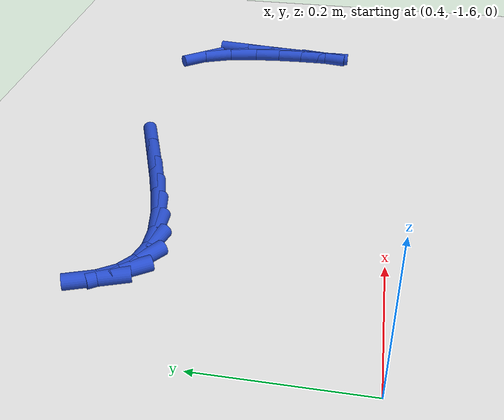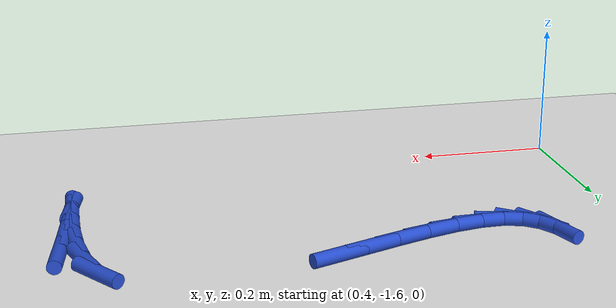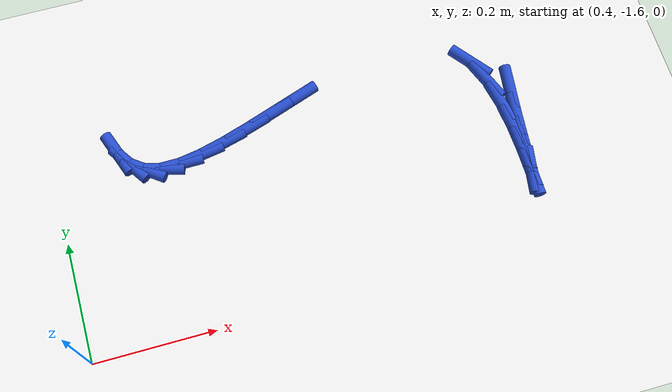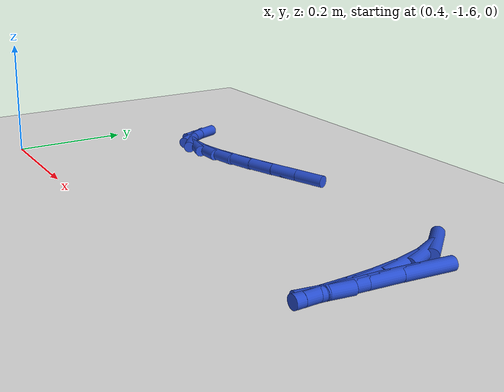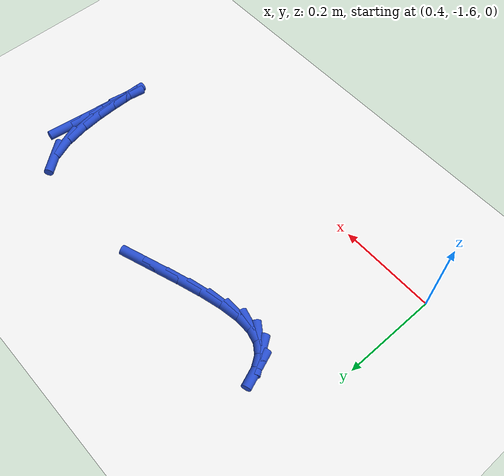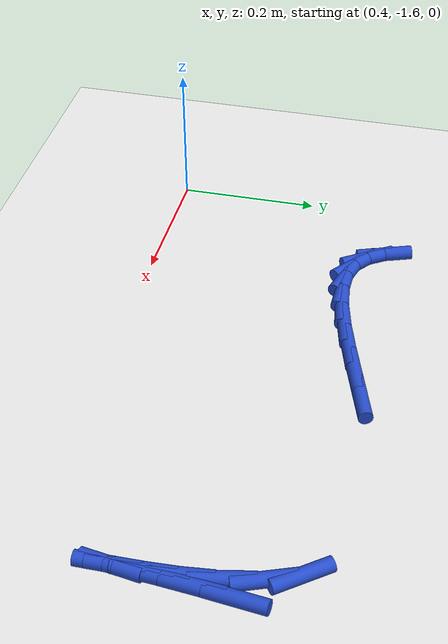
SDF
<sdf version="1.6">
 <world name="default">
  <model name="ground_plane">
   <static>1</static>
   <link name="link">
    <collision name="collision">
     <geometry><plane><normal>0 0 1</normal><size>100 100</size></plane></geometry>
     <surface><friction><ode><mu>100</mu><mu2>50</mu2></ode></friction></surface>
    </collision>
    <visual name="visual">
     <cast_shadows>0</cast_shadows>
     <geometry><plane><normal>0 0 1</normal><size>100 100</size></plane></geometry>
     <material>
      <script><uri>file://media/materials/scripts/gazebo.material</uri><name>Gazebo/WhiteGlow</name></script>
     </material>
    </visual>
   </link>
  </model>
  <model name="line">
   <link name="link_196">
    <pose>1.1780128550179256 -1.3298853398694388 0.01 0 1.57 1.4534137458363192</pose>
    <collision name="collision">
     <geometry><cylinder><radius>0.01</radius><length>0.08</length></cylinder></geometry>
    </collision>
    <visual name="visual">
     <material>
      <script><name>Gazebo/Blue</name><uri>file://media/materials/scripts/gazebo.material</uri></script>
     </material>
     <geometry><cylinder><radius>0.01</radius><length>0.08</length></cylinder></geometry>
    </visual>
   </link>
   <link name="link_197">
    <pose>1.1719905722086503 -1.3809542262087784 0.01 0 1.57 1.4717505881098047</pose>
    <collision name="collision">
     <geometry><cylinder><radius>0.01</radius><length>0.08</length></cylinder></geometry>
    </collision>
    <visual name="visual">
     <material>
      <script><name>Gazebo/Blue</name><uri>file://media/materials/scripts/gazebo.material</uri></script>
     </material>
     <geometry><cylinder><radius>0.01</radius><length>0.08</length></cylinder></geometry>
    </visual>
   </link>
   <link name="link_198">
    <pose>1.167600020253497 -1.425137705725604 0.01 0 1.57 1.4840346393878283</pose>
    <collision name="collision">
     <geometry><cylinder><radius>0.01</radius><length>0.08</length></cylinder></geometry>
    </collision>
    <visual name="visual">
     <material>
      <script><name>Gazebo/Blue</name><uri>file://media/materials/scripts/gazebo.material</uri></script>
     </material>
     <geometry><cylinder><radius>0.01</radius><length>0.08</length></cylinder></geometry>
    </visual>
   </link>
   <link name="link_199">
    <pose>1.1646252146419518 -1.4593387174728372 0.01 0 1.57 1.4869536088382949</pose>
    <collision name="collision">
     <geometry><cylinder><radius>0.01</radius><length>0.08</length></cylinder></geometry>
    </collision>
    <visual name="visual">
     <material>
      <script><name>Gazebo/Blue</name><uri>file://media/materials/scripts/gazebo.material</uri></script>
     </material>
     <geometry><cylinder><radius>0.01</radius><length>0.08</length></cylinder></geometry>
    </visual>
   </link>
   <link name="link_200">
    <pose>1.1628501708634995 -1.4804602005033978 0.01 0 1.57 1.4121245966501388</pose>
    <collision name="collision">
     <geometry><cylinder><radius>0.01</radius><length>0.08</length></cylinder></geometry>
    </collision>
    <visual name="visual">
     <material>
      <script><name>Gazebo/Blue</name><uri>file://media/materials/scripts/gazebo.material</uri></script>
     </material>
     <geometry><cylinder><radius>0.01</radius><length>0.08</length></cylinder></geometry>
    </visual>
   </link>
   <link name="link_201">
    <pose>1.1620589044076253 -1.485405093870206 0.01 0 1.57 -1.5658544785180668</pose>
    <collision name="collision">
     <geometry><cylinder><radius>0.01</radius><length>0.08</length></cylinder></geometry>
    </collision>
    <visual name="visual">
     <material>
      <script><name>Gazebo/Blue</name><uri>file://media/materials/scripts/gazebo.material</uri></script>
     </material>
     <geometry><cylinder><radius>0.01</radius><length>0.08</length></cylinder></geometry>
    </visual>
   </link>
   <link name="link_202">
    <pose>1.1619897224845253 -1.4714060076903221 0.01 0 1.57 -1.5616436716153217</pose>
    <collision name="collision">
     <geometry><cylinder><radius>0.01</radius><length>0.08</length></cylinder></geometry>
    </collision>
    <visual name="visual">
     <material>
      <script><name>Gazebo/Blue</name><uri>file://media/materials/scripts/gazebo.material</uri></script>
     </material>
     <geometry><cylinder><radius>0.01</radius><length>0.08</length></cylinder></geometry>
    </visual>
   </link>
   <link name="link_203">
    <pose>1.1617073356181635 -1.4405538696504225 0.01 0 1.57 -1.5244424021641012</pose>
    <collision name="collision">
     <geometry><cylinder><radius>0.01</radius><length>0.08</length></cylinder></geometry>
    </collision>
    <visual name="visual">
     <material>
      <script><name>Gazebo/Blue</name><uri>file://media/materials/scripts/gazebo.material</uri></script>
     </material>
     <geometry><cylinder><radius>0.01</radius><length>0.08</length></cylinder></geometry>
    </visual>
   </link>
   <link name="link_204">
    <pose>1.1597631535718937 -1.3986417902934187 0.01 0 1.57 -1.4635869532949173</pose>
    <collision name="collision">
     <geometry><cylinder><radius>0.01</radius><length>0.08</length></cylinder></geometry>
    </collision>
    <visual name="visual">
     <material>
      <script><name>Gazebo/Blue</name><uri>file://media/materials/scripts/gazebo.material</uri></script>
     </material>
     <geometry><cylinder><radius>0.01</radius><length>0.08</length></cylinder></geometry>
    </visual>
   </link>
   <link name="link_205">
    <pose>1.1546956811164812 -1.3515559574494214 0.01 0 1.57 -1.3655841911901483</pose>
    <collision name="collision">
     <geometry><cylinder><radius>0.01</radius><length>0.08</length></cylinder></geometry>
    </collision>
    <visual name="visual">
     <material>
      <script><name>Gazebo/Blue</name><uri>file://media/materials/scripts/gazebo.material</uri></script>
     </material>
     <geometry><cylinder><radius>0.01</radius><length>0.08</length></cylinder></geometry>
    </visual>
   </link>
   <link name="link_206">
    <pose>1.145043423022692 -1.3051825589485384 0.01 0 1.57 -1.1948916071626048</pose>
    <collision name="collision">
     <geometry><cylinder><radius>0.01</radius><length>0.08</length></cylinder></geometry>
    </collision>
    <visual name="visual">
     <material>
      <script><name>Gazebo/Blue</name><uri>file://media/materials/scripts/gazebo.material</uri></script>
     </material>
     <geometry><cylinder><radius>0.01</radius><length>0.08</length></cylinder></geometry>
    </visual>
   </link>
   <link name="link_207">
    <pose>1.1293451366470064 -1.265407017589114 0.01 0 1.57 -0.9040501950194844</pose>
    <collision name="collision">
     <geometry><cylinder><radius>0.01</radius><length>0.08</length></cylinder></geometry>
    </collision>
    <visual name="visual">
     <material>
      <script><name>Gazebo/Blue</name><uri>file://media/materials/scripts/gazebo.material</uri></script>
     </material>
     <geometry><cylinder><radius>0.01</radius><length>0.08</length></cylinder></geometry>
    </visual>
   </link>
   <link name="link_215">
    <pose>0.8219383809596327 -1.2513369897459394 0.01 0 1.57 0.3359673473448425</pose>
    <collision name="collision">
     <geometry><cylinder><radius>0.01</radius><length>0.08</length></cylinder></geometry>
    </collision>
    <visual name="visual">
     <material>
      <script><name>Gazebo/Blue</name><uri>file://media/materials/scripts/gazebo.material</uri></script>
     </material>
     <geometry><cylinder><radius>0.01</radius><length>0.08</length></cylinder></geometry>
    </visual>
   </link>
   <link name="link_216">
    <pose>0.7745172978152184 -1.267896719308692 0.01 0 1.57 0.33364012637406354</pose>
    <collision name="collision">
     <geometry><cylinder><radius>0.01</radius><length>0.08</length></cylinder></geometry>
    </collision>
    <visual name="visual">
     <material>
      <script><name>Gazebo/Blue</name><uri>file://media/materials/scripts/gazebo.material</uri></script>
     </material>
     <geometry><cylinder><radius>0.01</radius><length>0.08</length></cylinder></geometry>
    </visual>
   </link>
   <link name="link_217">
    <pose>0.7282167342504151 -1.2839443631905199 0.01 0 1.57 0.3097553174876397</pose>
    <collision name="collision">
     <geometry><cylinder><radius>0.01</radius><length>0.08</length></cylinder></geometry>
    </collision>
    <visual name="visual">
     <material>
      <script><name>Gazebo/Blue</name><uri>file://media/materials/scripts/gazebo.material</uri></script>
     </material>
     <geometry><cylinder><radius>0.01</radius><length>0.08</length></cylinder></geometry>
    </visual>
   </link>
   <link name="link_218">
    <pose>0.6839725287180057 -1.29810506348427 0.01 0 1.57 0.25830075017458526</pose>
    <collision name="collision">
     <geometry><cylinder><radius>0.01</radius><length>0.08</length></cylinder></geometry>
    </collision>
    <visual name="visual">
     <material>
      <script><name>Gazebo/Blue</name><uri>file://media/materials/scripts/gazebo.material</uri></script>
     </material>
     <geometry><cylinder><radius>0.01</radius><length>0.08</length></cylinder></geometry>
    </visual>
   </link>
   <link name="link_219">
    <pose>0.6427205196707727 -1.3090039622827876 0.01 0 1.57 0.16623232457755074</pose>
    <collision name="collision">
     <geometry><cylinder><radius>0.01</radius><length>0.08</length></cylinder></geometry>
    </collision>
    <visual name="visual">
     <material>
      <script><name>Gazebo/Blue</name><uri>file://media/materials/scripts/gazebo.material</uri></script>
     </material>
     <geometry><cylinder><radius>0.01</radius><length>0.08</length></cylinder></geometry>
    </visual>
   </link>
   <link name="link_220">
    <pose>0.6053965455614982 -1.3152662016789196 0.01 0 1.57 0.00772385467599919</pose>
    <collision name="collision">
     <geometry><cylinder><radius>0.01</radius><length>0.08</length></cylinder></geometry>
    </collision>
    <visual name="visual">
     <material>
      <script><name>Gazebo/Blue</name><uri>file://media/materials/scripts/gazebo.material</uri></script>
     </material>
     <geometry><cylinder><radius>0.01</radius><length>0.08</length></cylinder></geometry>
    </visual>
   </link>
   <link name="link_221">
    <pose>0.5729364448429669 -1.3155169237655113 0.01 0 1.57 -0.26112027359393697</pose>
    <collision name="collision">
     <geometry><cylinder><radius>0.01</radius><length>0.08</length></cylinder></geometry>
    </collision>
    <visual name="visual">
     <material>
      <script><name>Gazebo/Blue</name><uri>file://media/materials/scripts/gazebo.material</uri></script>
     </material>
     <geometry><cylinder><radius>0.01</radius><length>0.08</length></cylinder></geometry>
    </visual>
   </link>
   <link name="link_222">
    <pose>0.5462687580518185 -1.3083907457708108 0.01 0 1.57 -0.6336716229941892</pose>
    <collision name="collision">
     <geometry><cylinder><radius>0.01</radius><length>0.08</length></cylinder></geometry>
    </collision>
    <visual name="visual">
     <material>
      <script><name>Gazebo/Blue</name><uri>file://media/materials/scripts/gazebo.material</uri></script>
     </material>
     <geometry><cylinder><radius>0.01</radius><length>0.08</length></cylinder></geometry>
    </visual>
   </link>
   <link name="link_223">
    <pose>0.5257256261255329 -1.2932966110245128 0.01 0 1.57 -0.9754478116189227</pose>
    <collision name="collision">
     <geometry><cylinder><radius>0.01</radius><length>0.08</length></cylinder></geometry>
    </collision>
    <visual name="visual">
     <material>
      <script><name>Gazebo/Blue</name><uri>file://media/materials/scripts/gazebo.material</uri></script>
     </material>
     <geometry><cylinder><radius>0.01</radius><length>0.08</length></cylinder></geometry>
    </visual>
   </link>
   <link name="link_224">
    <pose>0.5106098474925372 -1.2709798936205416 0.01 0 1.57 -1.220013085123527</pose>
    <collision name="collision">
     <geometry><cylinder><radius>0.01</radius><length>0.08</length></cylinder></geometry>
    </collision>
    <visual name="visual">
     <material>
      <script><name>Gazebo/Blue</name><uri>file://media/materials/scripts/gazebo.material</uri></script>
     </material>
     <geometry><cylinder><radius>0.01</radius><length>0.08</length></cylinder></geometry>
    </visual>
   </link>
  </model>
 </world>
</sdf>
